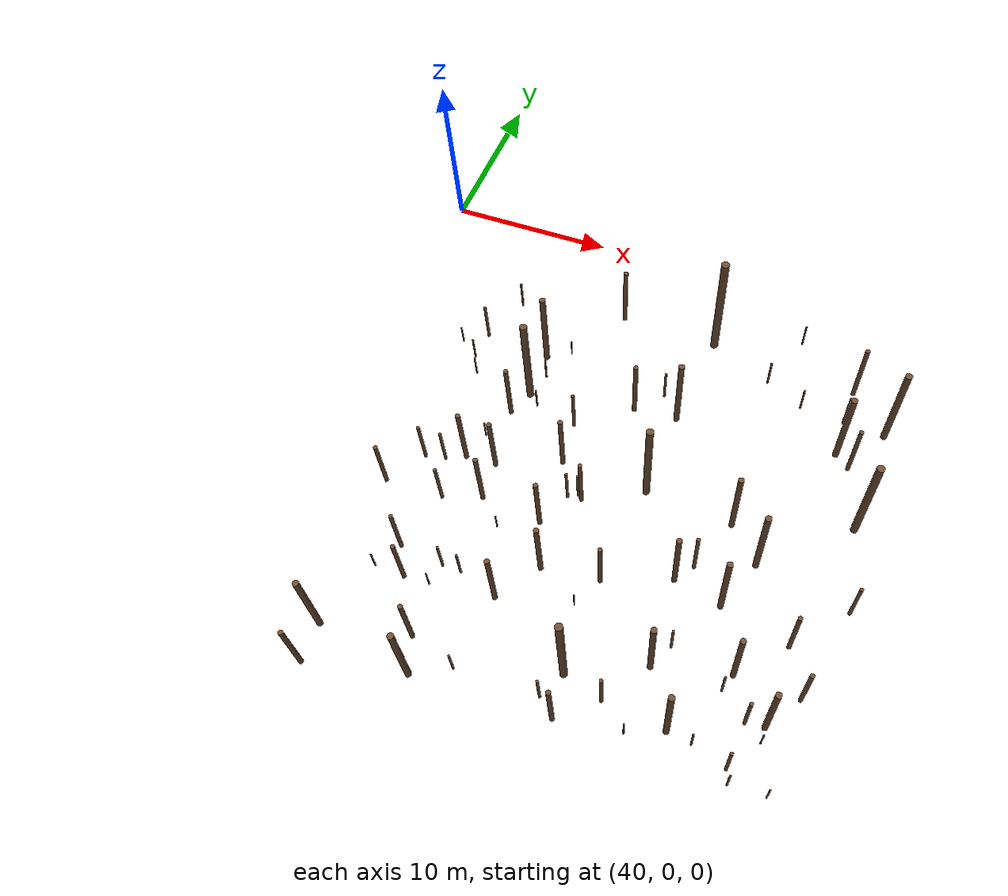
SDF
<sdf version="1.10">
 <model name="lehrforst_trees">
  <static>true</static>
  <link name="tree_0013">
   <pose>58.567 -3.165 1.219 3.14159 0 0</pose>
   <visual name="visual">
    <geometry><cylinder><radius>0.243</radius><length>7.776</length></cylinder></geometry>
    <material>
     <ambient>0.42 0.29 0.19 1</ambient>
     <diffuse>0.42 0.29 0.19 1</diffuse>
     <specular>0.42 0.29 0.19 1</specular>
    </material>
   </visual>
   <collision name="collision">
    <geometry><cylinder><radius>0.243</radius><length>7.776</length></cylinder></geometry>
   </collision>
  </link>
  <link name="tree_0060">
   <pose>48.872 -10.303 0.335 3.14159 0 0</pose>
   <visual name="visual">
    <geometry><cylinder><radius>0.216</radius><length>6.912</length></cylinder></geometry>
    <material>
     <ambient>0.42 0.29 0.19 1</ambient>
     <diffuse>0.42 0.29 0.19 1</diffuse>
     <specular>0.42 0.29 0.19 1</specular>
    </material>
   </visual>
   <collision name="collision">
    <geometry><cylinder><radius>0.216</radius><length>6.912</length></cylinder></geometry>
   </collision>
  </link>
  <link name="tree_0076">
   <pose>69.408 -13.844 2.384 3.14159 0 0</pose>
   <visual name="visual">
    <geometry><cylinder><radius>0.210</radius><length>6.720</length></cylinder></geometry>
    <material>
     <ambient>0.42 0.29 0.19 1</ambient>
     <diffuse>0.42 0.29 0.19 1</diffuse>
     <specular>0.42 0.29 0.19 1</specular>
    </material>
   </visual>
   <collision name="collision">
    <geometry><cylinder><radius>0.210</radius><length>6.720</length></cylinder></geometry>
   </collision>
  </link>
  <link name="tree_0094">
   <pose>57.165 -26.08 0.838 3.14159 0 0</pose>
   <visual name="visual">
    <geometry><cylinder><radius>0.206</radius><length>6.592</length></cylinder></geometry>
    <material>
     <ambient>0.42 0.29 0.19 1</ambient>
     <diffuse>0.42 0.29 0.19 1</diffuse>
     <specular>0.42 0.29 0.19 1</specular>
    </material>
   </visual>
   <collision name="collision">
    <geometry><cylinder><radius>0.206</radius><length>6.592</length></cylinder></geometry>
   </collision>
  </link>
  <link name="tree_0104">
   <pose>57.872 -14.827 1.113 3.14159 0 0</pose>
   <visual name="visual">
    <geometry><cylinder><radius>0.204</radius><length>6.528</length></cylinder></geometry>
    <material>
     <ambient>0.42 0.29 0.19 1</ambient>
     <diffuse>0.42 0.29 0.19 1</diffuse>
     <specular>0.42 0.29 0.19 1</specular>
    </material>
   </visual>
   <collision name="collision">
    <geometry><cylinder><radius>0.204</radius><length>6.528</length></cylinder></geometry>
   </collision>
  </link>
  <link name="tree_0142">
   <pose>69.806 -7.501 2.163 3.14159 0 0</pose>
   <visual name="visual">
    <geometry><cylinder><radius>0.192</radius><length>6.144</length></cylinder></geometry>
    <material>
     <ambient>0.42 0.29 0.19 1</ambient>
     <diffuse>0.42 0.29 0.19 1</diffuse>
     <specular>0.42 0.29 0.19 1</specular>
    </material>
   </visual>
   <collision name="collision">
    <geometry><cylinder><radius>0.192</radius><length>6.144</length></cylinder></geometry>
   </collision>
  </link>
  <link name="tree_0202">
   <pose>48.984 -7.73 0.366 3.14159 0 0</pose>
   <visual name="visual">
    <geometry><cylinder><radius>0.179</radius><length>5.728</length></cylinder></geometry>
    <material>
     <ambient>0.42 0.29 0.19 1</ambient>
     <diffuse>0.42 0.29 0.19 1</diffuse>
     <specular>0.42 0.29 0.19 1</specular>
    </material>
   </visual>
   <collision name="collision">
    <geometry><cylinder><radius>0.179</radius><length>5.728</length></cylinder></geometry>
   </collision>
  </link>
  <link name="tree_0230">
   <pose>67.448 -9.612 1.912 3.14159 0 0</pose>
   <visual name="visual">
    <geometry><cylinder><radius>0.176</radius><length>5.632</length></cylinder></geometry>
    <material>
     <ambient>0.42 0.29 0.19 1</ambient>
     <diffuse>0.42 0.29 0.19 1</diffuse>
     <specular>0.42 0.29 0.19 1</specular>
    </material>
   </visual>
   <collision name="collision">
    <geometry><cylinder><radius>0.176</radius><length>5.632</length></cylinder></geometry>
   </collision>
  </link>
  <link name="tree_0252">
   <pose>49.555 -28.673 -0.0860000000000001 3.14159 0 0</pose>
   <visual name="visual">
    <geometry><cylinder><radius>0.171</radius><length>5.472</length></cylinder></geometry>
    <material>
     <ambient>0.42 0.29 0.19 1</ambient>
     <diffuse>0.42 0.29 0.19 1</diffuse>
     <specular>0.42 0.29 0.19 1</specular>
    </material>
   </visual>
   <collision name="collision">
    <geometry><cylinder><radius>0.171</radius><length>5.472</length></cylinder></geometry>
   </collision>
  </link>
  <link name="tree_0253">
   <pose>64.9 -17.749 1.922 3.14159 0 0</pose>
   <visual name="visual">
    <geometry><cylinder><radius>0.171</radius><length>5.472</length></cylinder></geometry>
    <material>
     <ambient>0.42 0.29 0.19 1</ambient>
     <diffuse>0.42 0.29 0.19 1</diffuse>
     <specular>0.42 0.29 0.19 1</specular>
    </material>
   </visual>
   <collision name="collision">
    <geometry><cylinder><radius>0.171</radius><length>5.472</length></cylinder></geometry>
   </collision>
  </link>
  <link name="tree_0265">
   <pose>58.102 -9.891 1.034 3.14159 0 0</pose>
   <visual name="visual">
    <geometry><cylinder><radius>0.169</radius><length>5.408</length></cylinder></geometry>
    <material>
     <ambient>0.42 0.29 0.19 1</ambient>
     <diffuse>0.42 0.29 0.19 1</diffuse>
     <specular>0.42 0.29 0.19 1</specular>
    </material>
   </visual>
   <collision name="collision">
    <geometry><cylinder><radius>0.169</radius><length>5.408</length></cylinder></geometry>
   </collision>
  </link>
  <link name="tree_0271">
   <pose>43.701 -27.643 -0.687 3.14159 0 0</pose>
   <visual name="visual">
    <geometry><cylinder><radius>0.168</radius><length>5.376</length></cylinder></geometry>
    <material>
     <ambient>0.42 0.29 0.19 1</ambient>
     <diffuse>0.42 0.29 0.19 1</diffuse>
     <specular>0.42 0.29 0.19 1</specular>
    </material>
   </visual>
   <collision name="collision">
    <geometry><cylinder><radius>0.168</radius><length>5.376</length></cylinder></geometry>
   </collision>
  </link>
  <link name="tree_0286">
   <pose>63.034 -27.394 1.361 3.14159 0 0</pose>
   <visual name="visual">
    <geometry><cylinder><radius>0.164</radius><length>5.248</length></cylinder></geometry>
    <material>
     <ambient>0.42 0.29 0.19 1</ambient>
     <diffuse>0.42 0.29 0.19 1</diffuse>
     <specular>0.42 0.29 0.19 1</specular>
    </material>
   </visual>
   <collision name="collision">
    <geometry><cylinder><radius>0.164</radius><length>5.248</length></cylinder></geometry>
   </collision>
  </link>
  <link name="tree_0304">
   <pose>63.774 -20.646 1.965 3.14159 0 0</pose>
   <visual name="visual">
    <geometry><cylinder><radius>0.161</radius><length>5.152</length></cylinder></geometry>
    <material>
     <ambient>0.42 0.29 0.19 1</ambient>
     <diffuse>0.42 0.29 0.19 1</diffuse>
     <specular>0.42 0.29 0.19 1</specular>
    </material>
   </visual>
   <collision name="collision">
    <geometry><cylinder><radius>0.161</radius><length>5.152</length></cylinder></geometry>
   </collision>
  </link>
  <link name="tree_0316">
   <pose>61.328 -24.705 1.452 3.14159 0 0</pose>
   <visual name="visual">
    <geometry><cylinder><radius>0.158</radius><length>5.056</length></cylinder></geometry>
    <material>
     <ambient>0.42 0.29 0.19 1</ambient>
     <diffuse>0.42 0.29 0.19 1</diffuse>
     <specular>0.42 0.29 0.19 1</specular>
    </material>
   </visual>
   <collision name="collision">
    <geometry><cylinder><radius>0.158</radius><length>5.056</length></cylinder></geometry>
   </collision>
  </link>
  <link name="tree_0326">
   <pose>63.068 -15.884 1.667 3.14159 0 0</pose>
   <visual name="visual">
    <geometry><cylinder><radius>0.157</radius><length>5.024</length></cylinder></geometry>
    <material>
     <ambient>0.42 0.29 0.19 1</ambient>
     <diffuse>0.42 0.29 0.19 1</diffuse>
     <specular>0.42 0.29 0.19 1</specular>
    </material>
   </visual>
   <collision name="collision">
    <geometry><cylinder><radius>0.157</radius><length>5.024</length></cylinder></geometry>
   </collision>
  </link>
  <link name="tree_0342">
   <pose>67.457 -25.881 2.075 3.14159 0 0</pose>
   <visual name="visual">
    <geometry><cylinder><radius>0.155</radius><length>4.960</length></cylinder></geometry>
    <material>
     <ambient>0.42 0.29 0.19 1</ambient>
     <diffuse>0.42 0.29 0.19 1</diffuse>
     <specular>0.42 0.29 0.19 1</specular>
    </material>
   </visual>
   <collision name="collision">
    <geometry><cylinder><radius>0.155</radius><length>4.960</length></cylinder></geometry>
   </collision>
  </link>
  <link name="tree_0370">
   <pose>61.103 -20.025 1.641 3.14159 0 0</pose>
   <visual name="visual">
    <geometry><cylinder><radius>0.148</radius><length>4.736</length></cylinder></geometry>
    <material>
     <ambient>0.42 0.29 0.19 1</ambient>
     <diffuse>0.42 0.29 0.19 1</diffuse>
     <specular>0.42 0.29 0.19 1</specular>
    </material>
   </visual>
   <collision name="collision">
    <geometry><cylinder><radius>0.148</radius><length>4.736</length></cylinder></geometry>
   </collision>
  </link>
  <link name="tree_0379">
   <pose>65.352 -23.96 1.971 3.14159 0 0</pose>
   <visual name="visual">
    <geometry><cylinder><radius>0.147</radius><length>4.704</length></cylinder></geometry>
    <material>
     <ambient>0.42 0.29 0.19 1</ambient>
     <diffuse>0.42 0.29 0.19 1</diffuse>
     <specular>0.42 0.29 0.19 1</specular>
    </material>
   </visual>
   <collision name="collision">
    <geometry><cylinder><radius>0.147</radius><length>4.704</length></cylinder></geometry>
   </collision>
  </link>
  <link name="tree_0406">
   <pose>54.115 -21.471 0.85 3.14159 0 0</pose>
   <visual name="visual">
    <geometry><cylinder><radius>0.143</radius><length>4.576</length></cylinder></geometry>
    <material>
     <ambient>0.42 0.29 0.19 1</ambient>
     <diffuse>0.42 0.29 0.19 1</diffuse>
     <specular>0.42 0.29 0.19 1</specular>
    </material>
   </visual>
   <collision name="collision">
    <geometry><cylinder><radius>0.143</radius><length>4.576</length></cylinder></geometry>
   </collision>
  </link>
  <link name="tree_0408">
   <pose>52.384 -23.703 0.543 3.14159 0 0</pose>
   <visual name="visual">
    <geometry><cylinder><radius>0.143</radius><length>4.576</length></cylinder></geometry>
    <material>
     <ambient>0.42 0.29 0.19 1</ambient>
     <diffuse>0.42 0.29 0.19 1</diffuse>
     <specular>0.42 0.29 0.19 1</specular>
    </material>
   </visual>
   <collision name="collision">
    <geometry><cylinder><radius>0.143</radius><length>4.576</length></cylinder></geometry>
   </collision>
  </link>
  <link name="tree_0428">
   <pose>47.256 -16.093 -0.0350000000000001 3.14159 0 0</pose>
   <visual name="visual">
    <geometry><cylinder><radius>0.139</radius><length>4.448</length></cylinder></geometry>
    <material>
     <ambient>0.42 0.29 0.19 1</ambient>
     <diffuse>0.42 0.29 0.19 1</diffuse>
     <specular>0.42 0.29 0.19 1</specular>
    </material>
   </visual>
   <collision name="collision">
    <geometry><cylinder><radius>0.139</radius><length>4.448</length></cylinder></geometry>
   </collision>
  </link>
  <link name="tree_0437">
   <pose>52.835 -3.96 0.764 3.14159 0 0</pose>
   <visual name="visual">
    <geometry><cylinder><radius>0.138</radius><length>4.416</length></cylinder></geometry>
    <material>
     <ambient>0.42 0.29 0.19 1</ambient>
     <diffuse>0.42 0.29 0.19 1</diffuse>
     <specular>0.42 0.29 0.19 1</specular>
    </material>
   </visual>
   <collision name="collision">
    <geometry><cylinder><radius>0.138</radius><length>4.416</length></cylinder></geometry>
   </collision>
  </link>
  <link name="tree_0445">
   <pose>49.154 -16.143 0.177 3.14159 0 0</pose>
   <visual name="visual">
    <geometry><cylinder><radius>0.137</radius><length>4.384</length></cylinder></geometry>
    <material>
     <ambient>0.42 0.29 0.19 1</ambient>
     <diffuse>0.42 0.29 0.19 1</diffuse>
     <specular>0.42 0.29 0.19 1</specular>
    </material>
   </visual>
   <collision name="collision">
    <geometry><cylinder><radius>0.137</radius><length>4.384</length></cylinder></geometry>
   </collision>
  </link>
  <link name="tree_0450">
   <pose>52.846 -14.9 0.533 3.14159 0 0</pose>
   <visual name="visual">
    <geometry><cylinder><radius>0.136</radius><length>4.352</length></cylinder></geometry>
    <material>
     <ambient>0.42 0.29 0.19 1</ambient>
     <diffuse>0.42 0.29 0.19 1</diffuse>
     <specular>0.42 0.29 0.19 1</specular>
    </material>
   </visual>
   <collision name="collision">
    <geometry><cylinder><radius>0.136</radius><length>4.352</length></cylinder></geometry>
   </collision>
  </link>
  <link name="tree_0452">
   <pose>55.614 -10.321 0.877 3.14159 0 0</pose>
   <visual name="visual">
    <geometry><cylinder><radius>0.136</radius><length>4.352</length></cylinder></geometry>
    <material>
     <ambient>0.42 0.29 0.19 1</ambient>
     <diffuse>0.42 0.29 0.19 1</diffuse>
     <specular>0.42 0.29 0.19 1</specular>
    </material>
   </visual>
   <collision name="collision">
    <geometry><cylinder><radius>0.136</radius><length>4.352</length></cylinder></geometry>
   </collision>
  </link>
  <link name="tree_0460">
   <pose>48.636 -12.577 0.234 3.14159 0 0</pose>
   <visual name="visual">
    <geometry><cylinder><radius>0.134</radius><length>4.288</length></cylinder></geometry>
    <material>
     <ambient>0.42 0.29 0.19 1</ambient>
     <diffuse>0.42 0.29 0.19 1</diffuse>
     <specular>0.42 0.29 0.19 1</specular>
    </material>
   </visual>
   <collision name="collision">
    <geometry><cylinder><radius>0.134</radius><length>4.288</length></cylinder></geometry>
   </collision>
  </link>
  <link name="tree_0464">
   <pose>53.045 -18.956 0.649 3.14159 0 0</pose>
   <visual name="visual">
    <geometry><cylinder><radius>0.134</radius><length>4.288</length></cylinder></geometry>
    <material>
     <ambient>0.42 0.29 0.19 1</ambient>
     <diffuse>0.42 0.29 0.19 1</diffuse>
     <specular>0.42 0.29 0.19 1</specular>
    </material>
   </visual>
   <collision name="collision">
    <geometry><cylinder><radius>0.134</radius><length>4.288</length></cylinder></geometry>
   </collision>
  </link>
  <link name="tree_0474">
   <pose>67.517 -5.567 1.807 3.14159 0 0</pose>
   <visual name="visual">
    <geometry><cylinder><radius>0.133</radius><length>4.256</length></cylinder></geometry>
    <material>
     <ambient>0.42 0.29 0.19 1</ambient>
     <diffuse>0.42 0.29 0.19 1</diffuse>
     <specular>0.42 0.29 0.19 1</specular>
    </material>
   </visual>
   <collision name="collision">
    <geometry><cylinder><radius>0.133</radius><length>4.256</length></cylinder></geometry>
   </collision>
  </link>
  <link name="tree_0478">
   <pose>49.375 -18.44 0.297 3.14159 0 0</pose>
   <visual name="visual">
    <geometry><cylinder><radius>0.132</radius><length>4.224</length></cylinder></geometry>
    <material>
     <ambient>0.42 0.29 0.19 1</ambient>
     <diffuse>0.42 0.29 0.19 1</diffuse>
     <specular>0.42 0.29 0.19 1</specular>
    </material>
   </visual>
   <collision name="collision">
    <geometry><cylinder><radius>0.132</radius><length>4.224</length></cylinder></geometry>
   </collision>
  </link>
  <link name="tree_0487">
   <pose>43.932 -29.91 -0.906 3.14159 0 0</pose>
   <visual name="visual">
    <geometry><cylinder><radius>0.131</radius><length>4.192</length></cylinder></geometry>
    <material>
     <ambient>0.42 0.29 0.19 1</ambient>
     <diffuse>0.42 0.29 0.19 1</diffuse>
     <specular>0.42 0.29 0.19 1</specular>
    </material>
   </visual>
   <collision name="collision">
    <geometry><cylinder><radius>0.131</radius><length>4.192</length></cylinder></geometry>
   </collision>
  </link>
  <link name="tree_0504">
   <pose>57.59 -28.674 0.706 3.14159 0 0</pose>
   <visual name="visual">
    <geometry><cylinder><radius>0.128</radius><length>4.096</length></cylinder></geometry>
    <material>
     <ambient>0.42 0.29 0.19 1</ambient>
     <diffuse>0.42 0.29 0.19 1</diffuse>
     <specular>0.42 0.29 0.19 1</specular>
    </material>
   </visual>
   <collision name="collision">
    <geometry><cylinder><radius>0.128</radius><length>4.096</length></cylinder></geometry>
   </collision>
  </link>
  <link name="tree_0515">
   <pose>49.077 -26.962 -0.117 3.14159 0 0</pose>
   <visual name="visual">
    <geometry><cylinder><radius>0.126</radius><length>4.032</length></cylinder></geometry>
    <material>
     <ambient>0.42 0.29 0.19 1</ambient>
     <diffuse>0.42 0.29 0.19 1</diffuse>
     <specular>0.42 0.29 0.19 1</specular>
    </material>
   </visual>
   <collision name="collision">
    <geometry><cylinder><radius>0.126</radius><length>4.032</length></cylinder></geometry>
   </collision>
  </link>
  <link name="tree_0540">
   <pose>68.226 -10.901 2.018 3.14159 0 0</pose>
   <visual name="visual">
    <geometry><cylinder><radius>0.121</radius><length>3.872</length></cylinder></geometry>
    <material>
     <ambient>0.42 0.29 0.19 1</ambient>
     <diffuse>0.42 0.29 0.19 1</diffuse>
     <specular>0.42 0.29 0.19 1</specular>
    </material>
   </visual>
   <collision name="collision">
    <geometry><cylinder><radius>0.121</radius><length>3.872</length></cylinder></geometry>
   </collision>
  </link>
  <link name="tree_0547">
   <pose>54.799 -17.084 0.873 3.14159 0 0</pose>
   <visual name="visual">
    <geometry><cylinder><radius>0.119</radius><length>3.808</length></cylinder></geometry>
    <material>
     <ambient>0.42 0.29 0.19 1</ambient>
     <diffuse>0.42 0.29 0.19 1</diffuse>
     <specular>0.42 0.29 0.19 1</specular>
    </material>
   </visual>
   <collision name="collision">
    <geometry><cylinder><radius>0.119</radius><length>3.808</length></cylinder></geometry>
   </collision>
  </link>
  <link name="tree_0551">
   <pose>57.477 -21.405 1.279 3.14159 0 0</pose>
   <visual name="visual">
    <geometry><cylinder><radius>0.119</radius><length>3.808</length></cylinder></geometry>
    <material>
     <ambient>0.42 0.29 0.19 1</ambient>
     <diffuse>0.42 0.29 0.19 1</diffuse>
     <specular>0.42 0.29 0.19 1</specular>
    </material>
   </visual>
   <collision name="collision">
    <geometry><cylinder><radius>0.119</radius><length>3.808</length></cylinder></geometry>
   </collision>
  </link>
  <link name="tree_0559">
   <pose>67.56 -21.968 2.301 3.14159 0 0</pose>
   <visual name="visual">
    <geometry><cylinder><radius>0.118</radius><length>3.776</length></cylinder></geometry>
    <material>
     <ambient>0.42 0.29 0.19 1</ambient>
     <diffuse>0.42 0.29 0.19 1</diffuse>
     <specular>0.42 0.29 0.19 1</specular>
    </material>
   </visual>
   <collision name="collision">
    <geometry><cylinder><radius>0.118</radius><length>3.776</length></cylinder></geometry>
   </collision>
  </link>
  <link name="tree_0562">
   <pose>47.218 -24.131 -0.189 3.14159 0 0</pose>
   <visual name="visual">
    <geometry><cylinder><radius>0.117</radius><length>3.744</length></cylinder></geometry>
    <material>
     <ambient>0.42 0.29 0.19 1</ambient>
     <diffuse>0.42 0.29 0.19 1</diffuse>
     <specular>0.42 0.29 0.19 1</specular>
    </material>
   </visual>
   <collision name="collision">
    <geometry><cylinder><radius>0.117</radius><length>3.744</length></cylinder></geometry>
   </collision>
  </link>
  <link name="tree_0573">
   <pose>43.565 -19.042 -0.445 3.14159 0 0</pose>
   <visual name="visual">
    <geometry><cylinder><radius>0.115</radius><length>3.680</length></cylinder></geometry>
    <material>
     <ambient>0.42 0.29 0.19 1</ambient>
     <diffuse>0.42 0.29 0.19 1</diffuse>
     <specular>0.42 0.29 0.19 1</specular>
    </material>
   </visual>
   <collision name="collision">
    <geometry><cylinder><radius>0.115</radius><length>3.680</length></cylinder></geometry>
   </collision>
  </link>
  <link name="tree_0594">
   <pose>46.289 -22.566 -0.244 3.14159 0 0</pose>
   <visual name="visual">
    <geometry><cylinder><radius>0.112</radius><length>3.584</length></cylinder></geometry>
    <material>
     <ambient>0.42 0.29 0.19 1</ambient>
     <diffuse>0.42 0.29 0.19 1</diffuse>
     <specular>0.42 0.29 0.19 1</specular>
    </material>
   </visual>
   <collision name="collision">
    <geometry><cylinder><radius>0.112</radius><length>3.584</length></cylinder></geometry>
   </collision>
  </link>
  <link name="tree_0595">
   <pose>68.695 -24.364 2.31 3.14159 0 0</pose>
   <visual name="visual">
    <geometry><cylinder><radius>0.112</radius><length>3.584</length></cylinder></geometry>
    <material>
     <ambient>0.42 0.29 0.19 1</ambient>
     <diffuse>0.42 0.29 0.19 1</diffuse>
     <specular>0.42 0.29 0.19 1</specular>
    </material>
   </visual>
   <collision name="collision">
    <geometry><cylinder><radius>0.112</radius><length>3.584</length></cylinder></geometry>
   </collision>
  </link>
  <link name="tree_0670">
   <pose>61.916 -19.347 1.741 3.14159 0 0</pose>
   <visual name="visual">
    <geometry><cylinder><radius>0.101</radius><length>3.232</length></cylinder></geometry>
    <material>
     <ambient>0.42 0.29 0.19 1</ambient>
     <diffuse>0.42 0.29 0.19 1</diffuse>
     <specular>0.42 0.29 0.19 1</specular>
    </material>
   </visual>
   <collision name="collision">
    <geometry><cylinder><radius>0.101</radius><length>3.232</length></cylinder></geometry>
   </collision>
  </link>
  <link name="tree_0692">
   <pose>45.166 -17.048 -0.28 3.14159 0 0</pose>
   <visual name="visual">
    <geometry><cylinder><radius>0.097</radius><length>3.104</length></cylinder></geometry>
    <material>
     <ambient>0.42 0.29 0.19 1</ambient>
     <diffuse>0.42 0.29 0.19 1</diffuse>
     <specular>0.42 0.29 0.19 1</specular>
    </material>
   </visual>
   <collision name="collision">
    <geometry><cylinder><radius>0.097</radius><length>3.104</length></cylinder></geometry>
   </collision>
  </link>
  <link name="tree_0693">
   <pose>47.276 -19.273 -0.0290000000000001 3.14159 0 0</pose>
   <visual name="visual">
    <geometry><cylinder><radius>0.097</radius><length>3.104</length></cylinder></geometry>
    <material>
     <ambient>0.42 0.29 0.19 1</ambient>
     <diffuse>0.42 0.29 0.19 1</diffuse>
     <specular>0.42 0.29 0.19 1</specular>
    </material>
   </visual>
   <collision name="collision">
    <geometry><cylinder><radius>0.097</radius><length>3.104</length></cylinder></geometry>
   </collision>
  </link>
  <link name="tree_0702">
   <pose>59.656 -27.268 0.945 3.14159 0 0</pose>
   <visual name="visual">
    <geometry><cylinder><radius>0.096</radius><length>3.072</length></cylinder></geometry>
    <material>
     <ambient>0.42 0.29 0.19 1</ambient>
     <diffuse>0.42 0.29 0.19 1</diffuse>
     <specular>0.42 0.29 0.19 1</specular>
    </material>
   </visual>
   <collision name="collision">
    <geometry><cylinder><radius>0.096</radius><length>3.072</length></cylinder></geometry>
   </collision>
  </link>
  <link name="tree_0703">
   <pose>52.725 -12.697 0.571 3.14159 0 0</pose>
   <visual name="visual">
    <geometry><cylinder><radius>0.095</radius><length>3.040</length></cylinder></geometry>
    <material>
     <ambient>0.42 0.29 0.19 1</ambient>
     <diffuse>0.42 0.29 0.19 1</diffuse>
     <specular>0.42 0.29 0.19 1</specular>
    </material>
   </visual>
   <collision name="collision">
    <geometry><cylinder><radius>0.095</radius><length>3.040</length></cylinder></geometry>
   </collision>
  </link>
  <link name="tree_0709">
   <pose>69.961 -19.546 2.52 3.14159 0 0</pose>
   <visual name="visual">
    <geometry><cylinder><radius>0.094</radius><length>3.008</length></cylinder></geometry>
    <material>
     <ambient>0.42 0.29 0.19 1</ambient>
     <diffuse>0.42 0.29 0.19 1</diffuse>
     <specular>0.42 0.29 0.19 1</specular>
    </material>
   </visual>
   <collision name="collision">
    <geometry><cylinder><radius>0.094</radius><length>3.008</length></cylinder></geometry>
   </collision>
  </link>
  <link name="tree_0721">
   <pose>66.464 -26.24 1.862 3.14159 0 0</pose>
   <visual name="visual">
    <geometry><cylinder><radius>0.092</radius><length>2.944</length></cylinder></geometry>
    <material>
     <ambient>0.42 0.29 0.19 1</ambient>
     <diffuse>0.42 0.29 0.19 1</diffuse>
     <specular>0.42 0.29 0.19 1</specular>
    </material>
   </visual>
   <collision name="collision">
    <geometry><cylinder><radius>0.092</radius><length>2.944</length></cylinder></geometry>
   </collision>
  </link>
  <link name="tree_0745">
   <pose>45.317 -8.099 0.022 3.14159 0 0</pose>
   <visual name="visual">
    <geometry><cylinder><radius>0.088</radius><length>2.816</length></cylinder></geometry>
    <material>
     <ambient>0.42 0.29 0.19 1</ambient>
     <diffuse>0.42 0.29 0.19 1</diffuse>
     <specular>0.42 0.29 0.19 1</specular>
    </material>
   </visual>
   <collision name="collision">
    <geometry><cylinder><radius>0.088</radius><length>2.816</length></cylinder></geometry>
   </collision>
  </link>
  <link name="tree_0772">
   <pose>66.215 -28.492 1.549 3.14159 0 0</pose>
   <visual name="visual">
    <geometry><cylinder><radius>0.085</radius><length>2.720</length></cylinder></geometry>
    <material>
     <ambient>0.42 0.29 0.19 1</ambient>
     <diffuse>0.42 0.29 0.19 1</diffuse>
     <specular>0.42 0.29 0.19 1</specular>
    </material>
   </visual>
   <collision name="collision">
    <geometry><cylinder><radius>0.085</radius><length>2.720</length></cylinder></geometry>
   </collision>
  </link>
  <link name="tree_0780">
   <pose>46.467 -17.007 -0.11 3.14159 0 0</pose>
   <visual name="visual">
    <geometry><cylinder><radius>0.084</radius><length>2.688</length></cylinder></geometry>
    <material>
     <ambient>0.42 0.29 0.19 1</ambient>
     <diffuse>0.42 0.29 0.19 1</diffuse>
     <specular>0.42 0.29 0.19 1</specular>
    </material>
   </visual>
   <collision name="collision">
    <geometry><cylinder><radius>0.084</radius><length>2.688</length></cylinder></geometry>
   </collision>
  </link>
  <link name="tree_0817">
   <pose>54.143 -17.441 0.798 3.14159 0 0</pose>
   <visual name="visual">
    <geometry><cylinder><radius>0.079</radius><length>2.528</length></cylinder></geometry>
    <material>
     <ambient>0.42 0.29 0.19 1</ambient>
     <diffuse>0.42 0.29 0.19 1</diffuse>
     <specular>0.42 0.29 0.19 1</specular>
    </material>
   </visual>
   <collision name="collision">
    <geometry><cylinder><radius>0.079</radius><length>2.528</length></cylinder></geometry>
   </collision>
  </link>
  <link name="tree_0819">
   <pose>67.345 -8.341 1.761 3.14159 0 0</pose>
   <visual name="visual">
    <geometry><cylinder><radius>0.078</radius><length>2.496</length></cylinder></geometry>
    <material>
     <ambient>0.42 0.29 0.19 1</ambient>
     <diffuse>0.42 0.29 0.19 1</diffuse>
     <specular>0.42 0.29 0.19 1</specular>
    </material>
   </visual>
   <collision name="collision">
    <geometry><cylinder><radius>0.078</radius><length>2.496</length></cylinder></geometry>
   </collision>
  </link>
  <link name="tree_0849">
   <pose>56.758 -28.097 0.639 3.14159 0 0</pose>
   <visual name="visual">
    <geometry><cylinder><radius>0.073</radius><length>2.336</length></cylinder></geometry>
    <material>
     <ambient>0.42 0.29 0.19 1</ambient>
     <diffuse>0.42 0.29 0.19 1</diffuse>
     <specular>0.42 0.29 0.19 1</specular>
    </material>
   </visual>
   <collision name="collision">
    <geometry><cylinder><radius>0.073</radius><length>2.336</length></cylinder></geometry>
   </collision>
  </link>
  <link name="tree_0869">
   <pose>49.229 -23.228 0.079 3.14159 0 0</pose>
   <visual name="visual">
    <geometry><cylinder><radius>0.070</radius><length>2.240</length></cylinder></geometry>
    <material>
     <ambient>0.42 0.29 0.19 1</ambient>
     <diffuse>0.42 0.29 0.19 1</diffuse>
     <specular>0.42 0.29 0.19 1</specular>
    </material>
   </visual>
   <collision name="collision">
    <geometry><cylinder><radius>0.070</radius><length>2.240</length></cylinder></geometry>
   </collision>
  </link>
  <link name="tree_0877">
   <pose>57.173 -9.555 0.984 3.14159 0 0</pose>
   <visual name="visual">
    <geometry><cylinder><radius>0.069</radius><length>2.208</length></cylinder></geometry>
    <material>
     <ambient>0.42 0.29 0.19 1</ambient>
     <diffuse>0.42 0.29 0.19 1</diffuse>
     <specular>0.42 0.29 0.19 1</specular>
    </material>
   </visual>
   <collision name="collision">
    <geometry><cylinder><radius>0.069</radius><length>2.208</length></cylinder></geometry>
   </collision>
  </link>
  <link name="tree_0901">
   <pose>62.107 -23.955 1.572 3.14159 0 0</pose>
   <visual name="visual">
    <geometry><cylinder><radius>0.067</radius><length>2.144</length></cylinder></geometry>
    <material>
     <ambient>0.42 0.29 0.19 1</ambient>
     <diffuse>0.42 0.29 0.19 1</diffuse>
     <specular>0.42 0.29 0.19 1</specular>
    </material>
   </visual>
   <collision name="collision">
    <geometry><cylinder><radius>0.067</radius><length>2.144</length></cylinder></geometry>
   </collision>
  </link>
  <link name="tree_0916">
   <pose>50.355 -23.331 0.227 3.14159 0 0</pose>
   <visual name="visual">
    <geometry><cylinder><radius>0.065</radius><length>2.080</length></cylinder></geometry>
    <material>
     <ambient>0.42 0.29 0.19 1</ambient>
     <diffuse>0.42 0.29 0.19 1</diffuse>
     <specular>0.42 0.29 0.19 1</specular>
    </material>
   </visual>
   <collision name="collision">
    <geometry><cylinder><radius>0.065</radius><length>2.080</length></cylinder></geometry>
   </collision>
  </link>
  <link name="tree_0926">
   <pose>54.712 -17.293 0.893 3.14159 0 0</pose>
   <visual name="visual">
    <geometry><cylinder><radius>0.065</radius><length>2.080</length></cylinder></geometry>
    <material>
     <ambient>0.42 0.29 0.19 1</ambient>
     <diffuse>0.42 0.29 0.19 1</diffuse>
     <specular>0.42 0.29 0.19 1</specular>
    </material>
   </visual>
   <collision name="collision">
    <geometry><cylinder><radius>0.065</radius><length>2.080</length></cylinder></geometry>
   </collision>
  </link>
  <link name="tree_0930">
   <pose>46.571 -5.495 0.135 3.14159 0 0</pose>
   <visual name="visual">
    <geometry><cylinder><radius>0.064</radius><length>2.048</length></cylinder></geometry>
    <material>
     <ambient>0.42 0.29 0.19 1</ambient>
     <diffuse>0.42 0.29 0.19 1</diffuse>
     <specular>0.42 0.29 0.19 1</specular>
    </material>
   </visual>
   <collision name="collision">
    <geometry><cylinder><radius>0.064</radius><length>2.048</length></cylinder></geometry>
   </collision>
  </link>
  <link name="tree_0958">
   <pose>65.035 -25.285 1.79 3.14159 0 0</pose>
   <visual name="visual">
    <geometry><cylinder><radius>0.060</radius><length>1.920</length></cylinder></geometry>
    <material>
     <ambient>0.42 0.29 0.19 1</ambient>
     <diffuse>0.42 0.29 0.19 1</diffuse>
     <specular>0.42 0.29 0.19 1</specular>
    </material>
   </visual>
   <collision name="collision">
    <geometry><cylinder><radius>0.060</radius><length>1.920</length></cylinder></geometry>
   </collision>
  </link>
  <link name="tree_0966">
   <pose>62.631 -6.948 1.302 3.14159 0 0</pose>
   <visual name="visual">
    <geometry><cylinder><radius>0.060</radius><length>1.920</length></cylinder></geometry>
    <material>
     <ambient>0.42 0.29 0.19 1</ambient>
     <diffuse>0.42 0.29 0.19 1</diffuse>
     <specular>0.42 0.29 0.19 1</specular>
    </material>
   </visual>
   <collision name="collision">
    <geometry><cylinder><radius>0.060</radius><length>1.920</length></cylinder></geometry>
   </collision>
  </link>
  <link name="tree_0978">
   <pose>52.135 -28.166 0.143 3.14159 0 0</pose>
   <visual name="visual">
    <geometry><cylinder><radius>0.058</radius><length>1.856</length></cylinder></geometry>
    <material>
     <ambient>0.42 0.29 0.19 1</ambient>
     <diffuse>0.42 0.29 0.19 1</diffuse>
     <specular>0.42 0.29 0.19 1</specular>
    </material>
   </visual>
   <collision name="collision">
    <geometry><cylinder><radius>0.058</radius><length>1.856</length></cylinder></geometry>
   </collision>
  </link>
  <link name="tree_1005">
   <pose>64.826 -8.216 1.485 3.14159 0 0</pose>
   <visual name="visual">
    <geometry><cylinder><radius>0.054</radius><length>1.728</length></cylinder></geometry>
    <material>
     <ambient>0.42 0.29 0.19 1</ambient>
     <diffuse>0.42 0.29 0.19 1</diffuse>
     <specular>0.42 0.29 0.19 1</specular>
    </material>
   </visual>
   <collision name="collision">
    <geometry><cylinder><radius>0.054</radius><length>1.728</length></cylinder></geometry>
   </collision>
  </link>
  <link name="tree_1008">
   <pose>50.104 -10.376 0.416 3.14159 0 0</pose>
   <visual name="visual">
    <geometry><cylinder><radius>0.054</radius><length>1.728</length></cylinder></geometry>
    <material>
     <ambient>0.42 0.29 0.19 1</ambient>
     <diffuse>0.42 0.29 0.19 1</diffuse>
     <specular>0.42 0.29 0.19 1</specular>
    </material>
   </visual>
   <collision name="collision">
    <geometry><cylinder><radius>0.054</radius><length>1.728</length></cylinder></geometry>
   </collision>
  </link>
  <link name="tree_1015">
   <pose>45.362 -10.159 -0.0649999999999999 3.14159 0 0</pose>
   <visual name="visual">
    <geometry><cylinder><radius>0.053</radius><length>1.696</length></cylinder></geometry>
    <material>
     <ambient>0.42 0.29 0.19 1</ambient>
     <diffuse>0.42 0.29 0.19 1</diffuse>
     <specular>0.42 0.29 0.19 1</specular>
    </material>
   </visual>
   <collision name="collision">
    <geometry><cylinder><radius>0.053</radius><length>1.696</length></cylinder></geometry>
   </collision>
  </link>
  <link name="tree_1028">
   <pose>66.425 -29.268 1.493 3.14159 0 0</pose>
   <visual name="visual">
    <geometry><cylinder><radius>0.052</radius><length>1.664</length></cylinder></geometry>
    <material>
     <ambient>0.42 0.29 0.19 1</ambient>
     <diffuse>0.42 0.29 0.19 1</diffuse>
     <specular>0.42 0.29 0.19 1</specular>
    </material>
   </visual>
   <collision name="collision">
    <geometry><cylinder><radius>0.052</radius><length>1.664</length></cylinder></geometry>
   </collision>
  </link>
  <link name="tree_1039">
   <pose>64.383 -28.089 1.405 3.14159 0 0</pose>
   <visual name="visual">
    <geometry><cylinder><radius>0.052</radius><length>1.664</length></cylinder></geometry>
    <material>
     <ambient>0.42 0.29 0.19 1</ambient>
     <diffuse>0.42 0.29 0.19 1</diffuse>
     <specular>0.42 0.29 0.19 1</specular>
    </material>
   </visual>
   <collision name="collision">
    <geometry><cylinder><radius>0.052</radius><length>1.664</length></cylinder></geometry>
   </collision>
  </link>
  <link name="tree_1046">
   <pose>63.892 -3.681 1.377 3.14159 0 0</pose>
   <visual name="visual">
    <geometry><cylinder><radius>0.052</radius><length>1.664</length></cylinder></geometry>
    <material>
     <ambient>0.42 0.29 0.19 1</ambient>
     <diffuse>0.42 0.29 0.19 1</diffuse>
     <specular>0.42 0.29 0.19 1</specular>
    </material>
   </visual>
   <collision name="collision">
    <geometry><cylinder><radius>0.052</radius><length>1.664</length></cylinder></geometry>
   </collision>
  </link>
  <link name="tree_1086">
   <pose>50.359 -12.479 0.345 3.14159 0 0</pose>
   <visual name="visual">
    <geometry><cylinder><radius>0.048</radius><length>1.536</length></cylinder></geometry>
    <material>
     <ambient>0.42 0.29 0.19 1</ambient>
     <diffuse>0.42 0.29 0.19 1</diffuse>
     <specular>0.42 0.29 0.19 1</specular>
    </material>
   </visual>
   <collision name="collision">
    <geometry><cylinder><radius>0.048</radius><length>1.536</length></cylinder></geometry>
   </collision>
  </link>
  <link name="tree_1093">
   <pose>45.977 -11.307 -0.032 3.14159 0 0</pose>
   <visual name="visual">
    <geometry><cylinder><radius>0.047</radius><length>1.504</length></cylinder></geometry>
    <material>
     <ambient>0.42 0.29 0.19 1</ambient>
     <diffuse>0.42 0.29 0.19 1</diffuse>
     <specular>0.42 0.29 0.19 1</specular>
    </material>
   </visual>
   <collision name="collision">
    <geometry><cylinder><radius>0.047</radius><length>1.504</length></cylinder></geometry>
   </collision>
  </link>
  <link name="tree_1100">
   <pose>61.235 -28.572 0.97 3.14159 0 0</pose>
   <visual name="visual">
    <geometry><cylinder><radius>0.046</radius><length>1.472</length></cylinder></geometry>
    <material>
     <ambient>0.42 0.29 0.19 1</ambient>
     <diffuse>0.42 0.29 0.19 1</diffuse>
     <specular>0.42 0.29 0.19 1</specular>
    </material>
   </visual>
   <collision name="collision">
    <geometry><cylinder><radius>0.046</radius><length>1.472</length></cylinder></geometry>
   </collision>
  </link>
  <link name="tree_1128">
   <pose>68.229 -29.283 1.704 3.14159 0 0</pose>
   <visual name="visual">
    <geometry><cylinder><radius>0.044</radius><length>1.408</length></cylinder></geometry>
    <material>
     <ambient>0.42 0.29 0.19 1</ambient>
     <diffuse>0.42 0.29 0.19 1</diffuse>
     <specular>0.42 0.29 0.19 1</specular>
    </material>
   </visual>
   <collision name="collision">
    <geometry><cylinder><radius>0.044</radius><length>1.408</length></cylinder></geometry>
   </collision>
  </link>
  <link name="tree_1138">
   <pose>45.842 -24.418 -0.369 3.14159 0 0</pose>
   <visual name="visual">
    <geometry><cylinder><radius>0.043</radius><length>1.376</length></cylinder></geometry>
    <material>
     <ambient>0.42 0.29 0.19 1</ambient>
     <diffuse>0.42 0.29 0.19 1</diffuse>
     <specular>0.42 0.29 0.19 1</specular>
    </material>
   </visual>
   <collision name="collision">
    <geometry><cylinder><radius>0.043</radius><length>1.376</length></cylinder></geometry>
   </collision>
  </link>
  <link name="tree_1145">
   <pose>44.25 -9.389 -0.137 3.14159 0 0</pose>
   <visual name="visual">
    <geometry><cylinder><radius>0.043</radius><length>1.376</length></cylinder></geometry>
    <material>
     <ambient>0.42 0.29 0.19 1</ambient>
     <diffuse>0.42 0.29 0.19 1</diffuse>
     <specular>0.42 0.29 0.19 1</specular>
    </material>
   </visual>
   <collision name="collision">
    <geometry><cylinder><radius>0.043</radius><length>1.376</length></cylinder></geometry>
   </collision>
  </link>
  <link name="tree_1172">
   <pose>67.378 -27.128 1.833 3.14159 0 0</pose>
   <visual name="visual">
    <geometry><cylinder><radius>0.041</radius><length>1.312</length></cylinder></geometry>
    <material>
     <ambient>0.42 0.29 0.19 1</ambient>
     <diffuse>0.42 0.29 0.19 1</diffuse>
     <specular>0.42 0.29 0.19 1</specular>
    </material>
   </visual>
   <collision name="collision">
    <geometry><cylinder><radius>0.041</radius><length>1.312</length></cylinder></geometry>
   </collision>
  </link>
  <link name="tree_1177">
   <pose>49.138 -24.558 0.04 3.14159 0 0</pose>
   <visual name="visual">
    <geometry><cylinder><radius>0.041</radius><length>1.312</length></cylinder></geometry>
    <material>
     <ambient>0.42 0.29 0.19 1</ambient>
     <diffuse>0.42 0.29 0.19 1</diffuse>
     <specular>0.42 0.29 0.19 1</specular>
    </material>
   </visual>
   <collision name="collision">
    <geometry><cylinder><radius>0.041</radius><length>1.312</length></cylinder></geometry>
   </collision>
  </link>
  <link name="tree_1180">
   <pose>48.301 -15.23 0.038 3.14159 0 0</pose>
   <visual name="visual">
    <geometry><cylinder><radius>0.040</radius><length>1.280</length></cylinder></geometry>
    <material>
     <ambient>0.42 0.29 0.19 1</ambient>
     <diffuse>0.42 0.29 0.19 1</diffuse>
     <specular>0.42 0.29 0.19 1</specular>
    </material>
   </visual>
   <collision name="collision">
    <geometry><cylinder><radius>0.040</radius><length>1.280</length></cylinder></geometry>
   </collision>
  </link>
  <link name="tree_1199">
   <pose>51.309 -20.537 0.475 3.14159 0 0</pose>
   <visual name="visual">
    <geometry><cylinder><radius>0.038</radius><length>1.216</length></cylinder></geometry>
    <material>
     <ambient>0.42 0.29 0.19 1</ambient>
     <diffuse>0.42 0.29 0.19 1</diffuse>
     <specular>0.42 0.29 0.19 1</specular>
    </material>
   </visual>
   <collision name="collision">
    <geometry><cylinder><radius>0.038</radius><length>1.216</length></cylinder></geometry>
   </collision>
  </link>
  <link name="tree_1215">
   <pose>56.851 -23.481 1.076 3.14159 0 0</pose>
   <visual name="visual">
    <geometry><cylinder><radius>0.037</radius><length>1.184</length></cylinder></geometry>
    <material>
     <ambient>0.42 0.29 0.19 1</ambient>
     <diffuse>0.42 0.29 0.19 1</diffuse>
     <specular>0.42 0.29 0.19 1</specular>
    </material>
   </visual>
   <collision name="collision">
    <geometry><cylinder><radius>0.037</radius><length>1.184</length></cylinder></geometry>
   </collision>
  </link>
  <link name="tree_1230">
   <pose>51.03 -8.521 0.48 3.14159 0 0</pose>
   <visual name="visual">
    <geometry><cylinder><radius>0.037</radius><length>1.184</length></cylinder></geometry>
    <material>
     <ambient>0.42 0.29 0.19 1</ambient>
     <diffuse>0.42 0.29 0.19 1</diffuse>
     <specular>0.42 0.29 0.19 1</specular>
    </material>
   </visual>
   <collision name="collision">
    <geometry><cylinder><radius>0.037</radius><length>1.184</length></cylinder></geometry>
   </collision>
  </link>
 </model>
</sdf>
